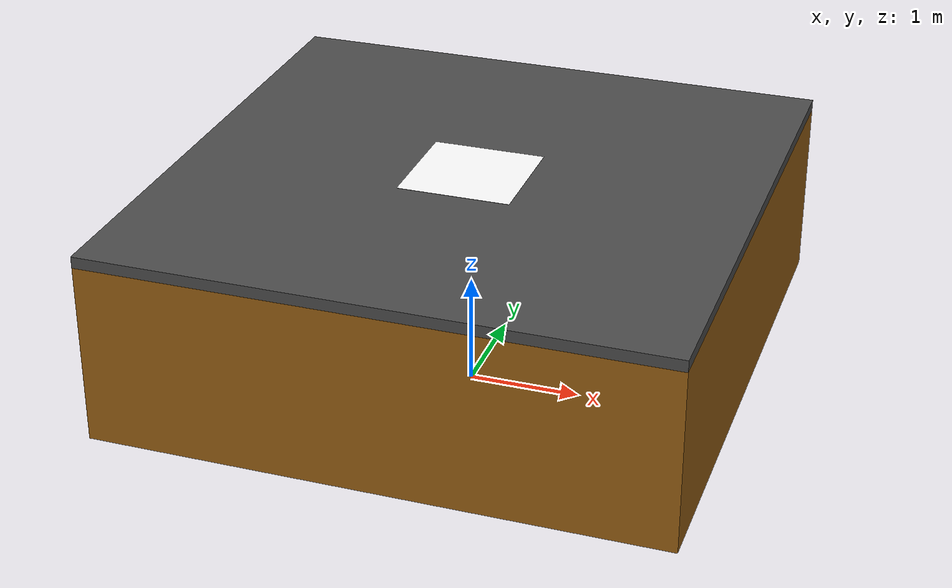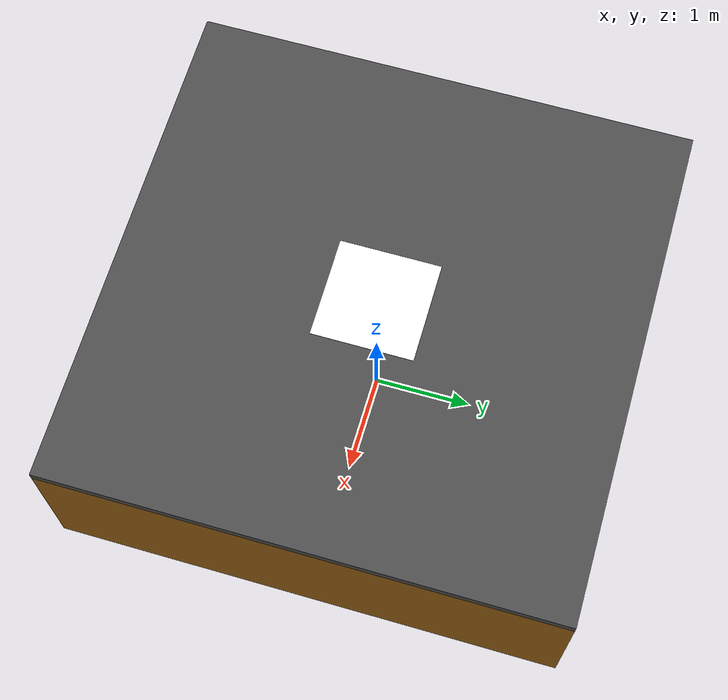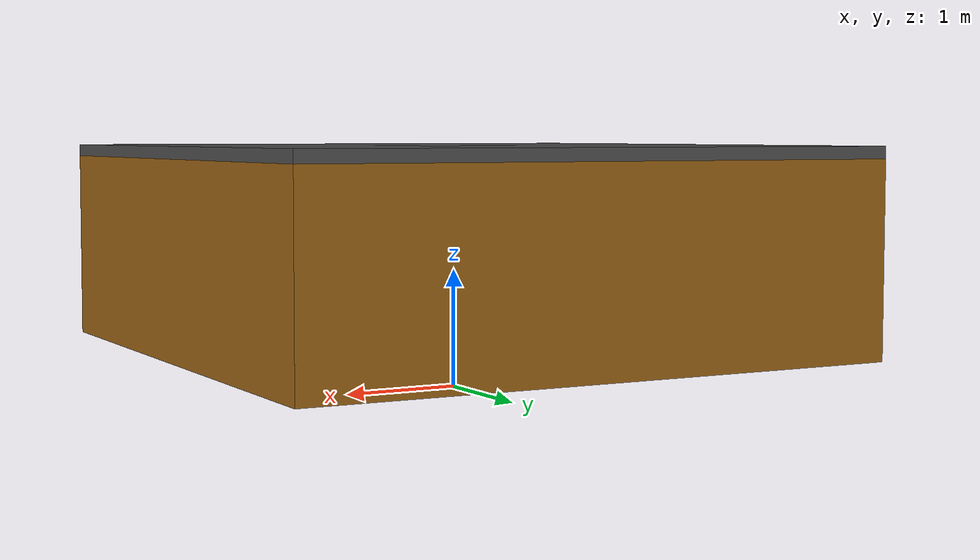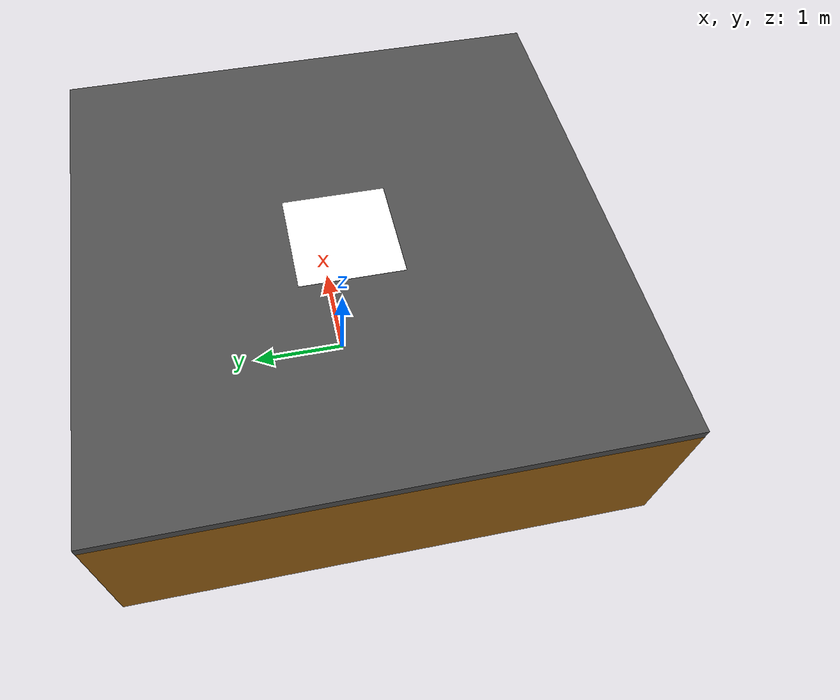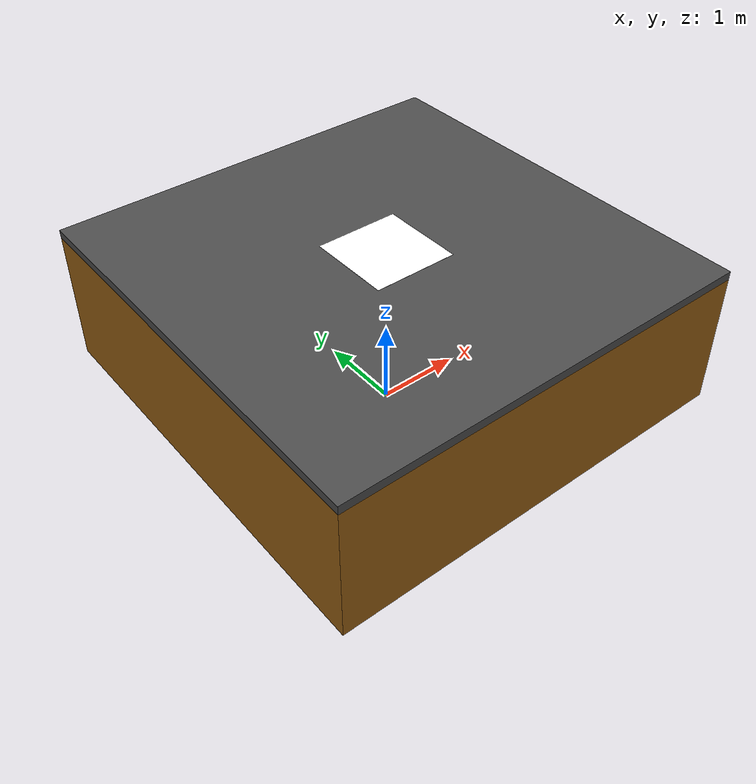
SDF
<?xml version="1.0" encoding="UTF-8"?>
<sdf version="1.9">
  <model name="flat_platform">
    <link name="platform_link">
      <visual name="body_visual">
        <pose>0 0 -0.85 0 0 0</pose>
        <geometry>
          <box>
            <size>5 5 1.6</size>
          </box>
        </geometry>
        <material>
          <ambient>0.55 0.32 0.05 1</ambient>
          <diffuse>0.6 0.38 0.08 1</diffuse>
          <specular>0.2 0.2 0.2 1</specular>
        </material>
      </visual>
      <collision name="body_collision">
        <pose>0 0 -0.875 0 0 0</pose>
        <geometry>
          <box>
            <size>5 5 1.65</size>
          </box>
        </geometry>
      </collision>
      <visual name="platform_visual">
        <geometry>
          <box>
            <size>5 5 0.1</size>
          </box>
        </geometry>
        <material>
          <ambient>0.3 0.3 0.3 1</ambient>
          <diffuse>0.3 0.3 0.3 1</diffuse>
          <specular>0.1 0.1 0.1 1</specular>
        </material>
      </visual>
      <!-- ArUco decal on the top face, centred, well clear of the 5x5 edges.
           Same asset/geometry as moving_platform_aruco. -->
      <visual name="aruco_visual">
        <pose>0 0 0.051 0 0 0</pose>
        <geometry>
          <plane>
            <normal>0 0 1</normal>
            <size>1.0 1.0</size>
          </plane>
        </geometry>
        <material>
          <diffuse>1 1 1 1</diffuse>
          <specular>0.4 0.4 0.4 1</specular>
          <pbr>
            <metal>
              <albedo_map>model://moving_platform_aruco_route/arucotag.png</albedo_map>
            </metal>
          </pbr>
        </material>
      </visual>
      <collision name="platform_collision">
        <geometry>
          <box>
            <size>5 5 0.1</size>
          </box>
        </geometry>
      </collision>
      <pose>0 0 2 0 0 0</pose>
      <inertial>
          <mass>10000</mass>
          <inertia>
              <ixx>23841.67</ixx>
              <iyy>23841.67</iyy>
              <izz>41666.67</izz>
          </inertia>
      </inertial>
      <sensor name="navsat_sensor" type="navsat">
        <always_on>1</always_on>
        <update_rate>30</update_rate>
      </sensor>
    </link>
    <!-- Driven by an external cmd_vel (moving_marker_node, pattern='route'),
         not MovingPlatformController, see the link comment above. -->
    <plugin filename="gz-sim-velocity-control-system"
            name="gz::sim::systems::VelocityControl">
      <topic>/model/flat_platform/cmd_vel</topic>
    </plugin>
  </model>
</sdf>
